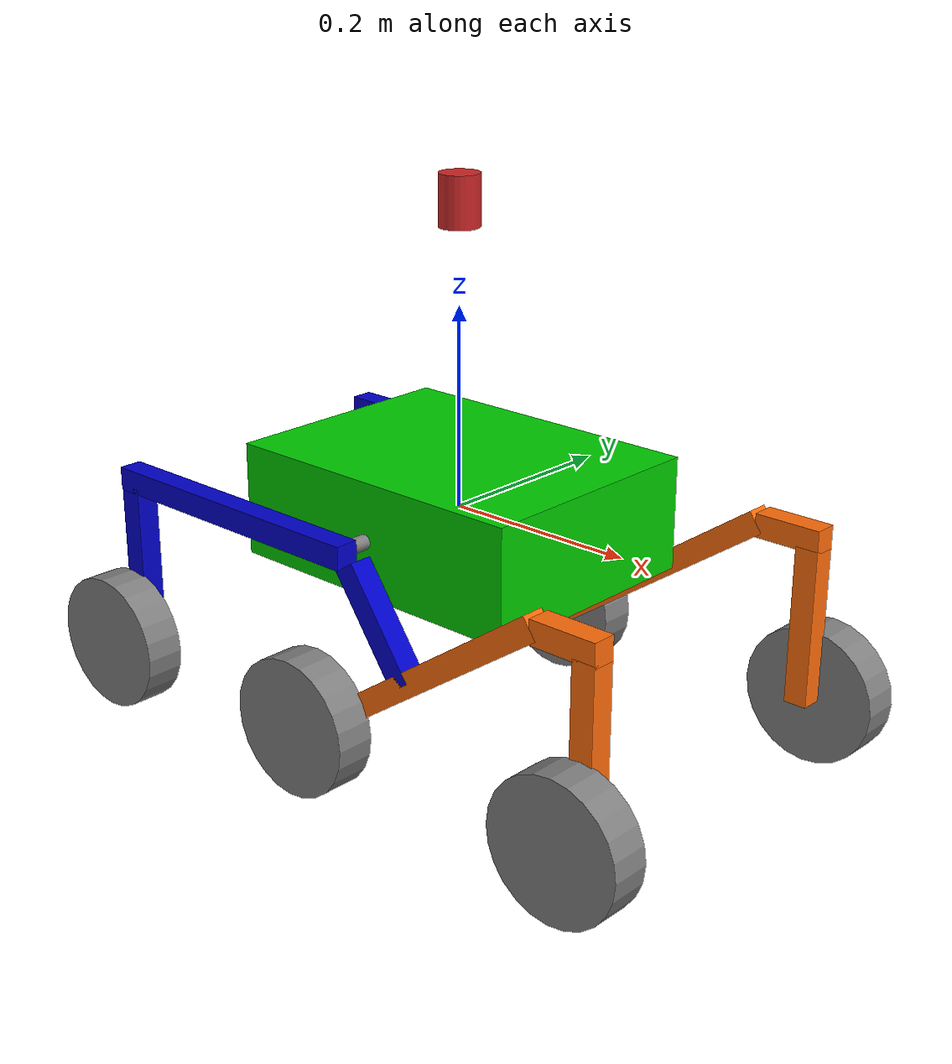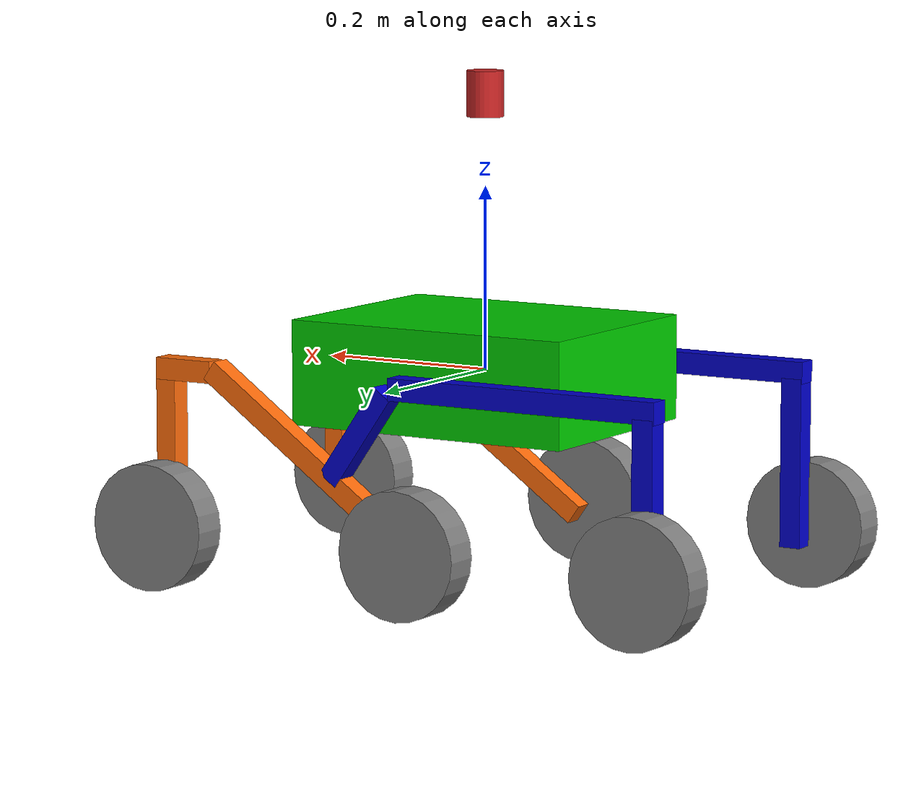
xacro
<?xml version="1.0"?>
<robot name="rocker_bogie_no_lidar" xmlns:xacro="http://www.ros.org/wiki/xacro">

  <xacro:include filename="$(find rocker_bogie)/urdf/color.xacro" />
  <xacro:include filename="$(find rocker_bogie)/urdf/rocker_bogie.gazebo.xacro" />

  <!-- Properties for reuse -->
  <xacro:property name="wheel_radius" value="0.07" />
  <xacro:property name="wheel_length" value="0.04" />
  <xacro:property name="chassis_size" value="0.334 0.254 0.115" />
  <xacro:property name="wheel_color" value="0.3 0.3 0.3 1" />

  <link name="base_link"></link>

  <link name="base_scan">
    <visual>
      <origin xyz="0 0 0.1" rpy="0 0 0" />
      <geometry>
        <cylinder length="0.05" radius="0.02" />
      </geometry>
    </visual>
  </link>

  <joint name="scan_joint" type="fixed">
    <parent link="base_link" />
    <child link="base_scan" />
    <origin xyz="0 0 0.2" rpy="0 0 0" />
  </joint>

  <link name="base_footprint" />

  <joint name="base_joint" type="fixed">
    <parent link="base_footprint" />
    <child link="base_link" />
    <origin xyz="0 0 0" rpy="0 0 0" />
  </joint>

  <!-- Macro for Chassis -->
  <xacro:macro name="chassis" params="">
    <link name="chassis">
      <visual>
        <geometry>
          <box size="${chassis_size}" />
        </geometry>
        <origin xyz="0 0 0" />
        <material name="green" />
      </visual>

      <collision>
        <geometry>
          <box size="${chassis_size}" />
        </geometry>
        <origin xyz="0 0 0" />
      </collision>

      <inertial>
        <mass value="5.3" />
        <origin xyz="0 0 0" />
        <inertia ixx="0.5" ixy="0" ixz="0" iyy="0.5" iyz="0" izz="0.8" />
      </inertial>
    </link>
  </xacro:macro>

  <!-- Macro for Cylinder Connector -->
  <xacro:macro name="cylinder_connector" params="name position_y">
    <link name="${name}">
      <visual>
        <geometry>
          <cylinder radius="0.0075" length="0.03" />
        </geometry>
        <origin xyz="0 ${position_y} 0" rpy="1.5707 0 0" />
        <material name="grey" />
      </visual>

      <collision>
        <geometry>
          <cylinder radius="0.0075" length="0.028" />
        </geometry>
        <origin xyz="0 ${position_y} 0" rpy="1.5707 0 0" />
      </collision>

      <inertial>
        <mass value="0.5" />
        <origin xyz="0 ${position_y} 0" />  <!-- CoM aligned with connector -->
        <inertia ixx="0.00005" ixy="0" ixz="0" iyy="0.00005" iyz="0" izz="0.0001" />
      </inertial>
    </link>
  </xacro:macro>

  <!-- Macro for Rocker Arms -->
  <xacro:macro name="rocker_arm" params="name position_y">
    <link name="${name}">

      <visual> <!-- Horizontal Bar Collision -->
        <geometry>
          <box size="0.32 0.024 0.024" />
        </geometry>
        <origin xyz="-0.147 ${position_y} 0" />
        <material name="blue" />
      </visual>

      <visual> <!-- Vertical Bar Collision -->
        <geometry>
          <box size="0.024 0.024 0.186" />
        </geometry>
        <origin xyz="-0.294 ${position_y} -0.1" />
        <material name="blue" />
      </visual>

      <visual> <!-- Rotating Bar Collision -->
        <geometry>
          <box size="0.024 0.024 0.12" />
        </geometry>
        <origin xyz="0.055 ${position_y} -0.055" rpy="0 -0.61 0" />
        <material name="blue" />
      </visual>

      <collision> <!-- Horizontal Bar Collision -->
        <geometry>
          <box size="0.32 0.024 0.024" />
        </geometry>
        <origin xyz="-0.147 ${position_y} 0" />
      </collision>

      <collision> <!-- Vertical Bar Collision -->
        <geometry>
          <box size="0.024 0.024 0.186" />
        </geometry>
        <origin xyz="-0.294 ${position_y} -0.1" />
      </collision>

      <collision> <!-- Rotating Bar Collision -->
        <geometry>
          <box size="0.024 0.024 0.12" />
        </geometry>
        <origin xyz="0.055 ${position_y} -0.055" rpy="0 -0.61 0" />
      </collision>

      <inertial>
        <!-- Adjusted mass to match the size -->
        <mass value="0.25" />
        <!-- CoM aligned to the center of the rocker arm -->
        <origin xyz="-0.15 ${position_y} 0" />

        <!-- Adjusted inertia tensor values -->
        <inertia ixx="0.005" ixy="0" ixz="0" iyy="0.006" iyz="0" izz="0.007" />
      </inertial>
    </link>
  </xacro:macro>

  <!-- Macro for Bogie Arms -->
  <xacro:macro name="bogie_arm" params="name position_y">
    <link name="${name}">
      <visual> <!-- Horizontal Bar -->
        <geometry>
          <box size="0.07 0.024 0.024" />
        </geometry>
        <origin xyz="0.177 ${position_y} 0.1" />
        <material name="orange" />
      </visual>

      <visual> <!-- Front Vertical Bar -->
        <geometry>
          <box size="0.024 0.024 0.162" />
        </geometry>
        <origin xyz="0.2 ${position_y} 0.01" />
        <material name="orange" />
      </visual>

      <visual> <!-- Back Rotating Bar -->
        <geometry>
          <box size="0.024 0.024 0.323" />
        </geometry>
        <origin xyz="0.01 ${position_y} 0.01" rpy="0 0.96 0" />
        <material name="orange" />
      </visual>

      <collision> <!-- Horizontal Bar Collision -->
        <geometry>
          <box size="0.07 0.024 0.024" />
        </geometry>
        <origin xyz="0.177 ${position_y} 0.1" />
      </collision>

      <collision> <!-- Front Vertical Bar Collision -->
        <geometry>
          <box size="0.024 0.024 0.162" />
        </geometry>
        <origin xyz="0.2 ${position_y} 0.01" />
      </collision>

      <collision> <!-- Back Rotating Bar Collision -->
        <geometry>
          <box size="0.024 0.024 0.323" />
        </geometry>
        <origin xyz="0.01 ${position_y} 0.01" rpy="0 0.96 0" />
      </collision>

      <inertial>
        <mass value="0.2" />
        <origin xyz="0.086 ${position_y} 0" />
        <inertia ixx="0.004" ixy="0" ixz="0" iyy="0.004" iyz="0" izz="0.008" />
      </inertial>
    </link>
  </xacro:macro>

  <!-- Create Links -->
  <xacro:chassis />
  <xacro:rocker_arm name="rocker_left" position_y="0" />
  <xacro:rocker_arm name="rocker_right" position_y="0" />
  <xacro:bogie_arm name="bogie_left" position_y="0" />
  <xacro:bogie_arm name="bogie_right" position_y="0" />
  <xacro:cylinder_connector name="cylinder_connector_left" position_y="0.145" />
  <xacro:cylinder_connector name="cylinder_connector_right" position_y="-0.145" />

  <!-- MACRO : Fixed Joints -->
  <xacro:macro name="fixed_joint" params="joint_name parent_link child_link origin_z">
    <joint name="${joint_name}" type="fixed">
      <parent link="${parent_link}" />
      <child link="${child_link}" />
      <origin xyz="0 0 ${origin_z}" />
    </joint>
  </xacro:macro>

  <!-- Create Fixed Joints -->
  <xacro:fixed_joint joint_name="base_to_chassis" parent_link="base_link" child_link="chassis"
    origin_z="0" />
  <xacro:fixed_joint joint_name="joint_chassis_to_cylinder_left" parent_link="chassis"
    child_link="cylinder_connector_left" origin_z="0" />
  <xacro:fixed_joint joint_name="joint_chassis_to_cylinder_right" parent_link="chassis"
    child_link="cylinder_connector_right" origin_z="0" />

  <!-- MACRO : Revolute Joints -->
  <xacro:macro name="revolute_joint"
    params="joint_name parent_link child_link origin_x origin_y origin_z">
    <joint name="${joint_name}" type="revolute">
      <parent link="${parent_link}" />
      <child link="${child_link}" />
      <origin xyz="${origin_x} ${origin_y} ${origin_z}" />
      <axis xyz="0 1 0" />
      <limit lower="-0.26" upper="0.26" velocity="100" effort="100" />
      <dynamics damping="0.5" spring_stiffness="50" />
    </joint>
  </xacro:macro>

  <!-- Create Relovute joints : CYlinder-Rocker-Bogie-->
  <xacro:revolute_joint joint_name="joint_cylinder_left_to_rocker_left"
    parent_link="cylinder_connector_left" child_link="rocker_left" origin_x="0" origin_y="0.165"
    origin_z="0" />
  <xacro:revolute_joint joint_name="joint_cylinder_left_to_rocker_right"
    parent_link="cylinder_connector_right" child_link="rocker_right" origin_x="0" origin_y="-0.165"
    origin_z="0" />
  <xacro:revolute_joint joint_name="joint_rocker_to_bogie_left" parent_link="rocker_left"
    child_link="bogie_left" origin_x="0.1" origin_y="0" origin_z="-0.1" />
  <xacro:revolute_joint joint_name="joint_rocker_to_bogie_right" parent_link="rocker_right"
    child_link="bogie_right" origin_x="0.1" origin_y="0" origin_z="-0.1" />

  <!-- Macro  Wheels links -->
  <xacro:macro name="wheel" params="name">
    <link name="${name}">
      <visual>
        <geometry>
          <cylinder radius="${wheel_radius}" length="${wheel_length}" />
        </geometry>
        <origin xyz="0 0 0" rpy="1.5707 0 0" />
        <material name="grey" />
      </visual>
      <collision>
        <geometry>
          <cylinder radius="${wheel_radius}" length="${wheel_length}" />
        </geometry>
        <origin xyz="0 0 0" rpy="1.5707 0 0" />
      </collision>
      <inertial>
        <mass value="4" />
        <origin xyz="0 0 0" />
        <inertia ixx="0.0005" ixy="0" ixz="0" iyy="0.0005" iyz="0" izz="0.001" />
      </inertial>
    </link>
  </xacro:macro>

  <!-- MACRO : Wheel Joints -->
  <xacro:macro name="wheel_joint" params="wheel_name parent_link origin_x origin_y origin_z">
    <joint name="joint_${wheel_name}" type="continuous">
      <parent link="${parent_link}" /> <!-- Attach the wheel to the correct parent link (e.g., bogie
      or rocker) -->
      <child link="${wheel_name}" />
      <origin xyz="${origin_x} ${origin_y} ${origin_z}" />
      <axis xyz="0 1 0" /> <!-- Rotate around y-axis -->
    </joint>
  </xacro:macro>

  <!-- Create Wheel link  -->
  <xacro:wheel name="wheel_front_left" />
  <xacro:wheel name="wheel_middle_left" />
  <xacro:wheel name="wheel_back_left" />
  <xacro:wheel name="wheel_front_right" />
  <xacro:wheel name="wheel_middle_right" />
  <xacro:wheel name="wheel_back_right" />

  <!-- Create Wheel Joint  -->
  <xacro:wheel_joint wheel_name="wheel_front_left" parent_link="bogie_left" origin_x="0.2"
    origin_y="0.03" origin_z="-0.07" />
  <xacro:wheel_joint wheel_name="wheel_middle_left" parent_link="bogie_left" origin_x="-0.12"
    origin_y="0.03" origin_z="-0.07" />
  <xacro:wheel_joint wheel_name="wheel_back_left" parent_link="rocker_left" origin_x="-0.3"
    origin_y="0.03" origin_z="-0.17" />
  <xacro:wheel_joint wheel_name="wheel_front_right" parent_link="bogie_right" origin_x="0.2"
    origin_y="-0.03" origin_z="-0.07" />
  <xacro:wheel_joint wheel_name="wheel_middle_right" parent_link="bogie_right" origin_x="-0.12"
    origin_y="-0.03" origin_z="-0.07" />
  <xacro:wheel_joint wheel_name="wheel_back_right" parent_link="rocker_right" origin_x="-0.3"
    origin_y="-0.03" origin_z="-0.17" />

  <gazebo>
    <plugin name="skid_steering_plugin" filename="libskid_steering_plugin.so">
      <left_joint>joint_wheel_front_left</left_joint>
      <left_joint>joint_wheel_middle_left</left_joint>
      <left_joint>joint_wheel_back_left</left_joint>
      <right_joint>joint_wheel_front_right</right_joint>
      <right_joint>joint_wheel_middle_right</right_joint>
      <right_joint>joint_wheel_back_right</right_joint>
    </plugin>
  </gazebo>

</robot>

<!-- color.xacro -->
<robot name="color" xmlns:xacro="http://ros.org/wiki/xacro">

  <material name="black">
      <color rgba="0.0 0.0 0.0 1.0"/>
  </material>

  <material name="dark">
    <color rgba="0.3 0.3 0.3 1.0"/>
  </material>

  <material name="light_black">
    <color rgba="0.4 0.4 0.4 1.0"/>
  </material>

  <material name="blue">
    <color rgba="0.0 0.0 0.8 1.0"/>
  </material>

  <material name="green">
    <color rgba="0.0 0.8 0.0 1.0"/>
  </material>

  <material name="grey">
    <color rgba="0.5 0.5 0.5 1.0"/>
  </material>

  <material name="orange">
    <color rgba="${255/255} ${108/255} ${10/255} 1.0"/>
  </material>

  <material name="brown">
    <color rgba="${222/255} ${207/255} ${195/255} 1.0"/>
  </material>

  <material name="red">
    <color rgba="0.8 0.0 0.0 1.0"/>
  </material>

  <material name="white">
    <color rgba="1.0 1.0 1.0 1.0"/>
  </material>
</robot>
